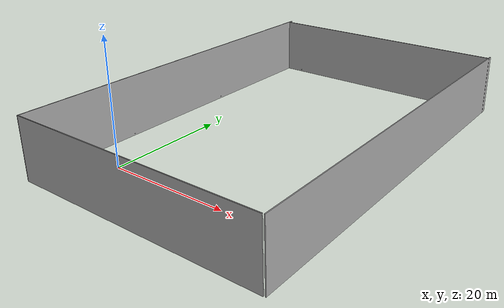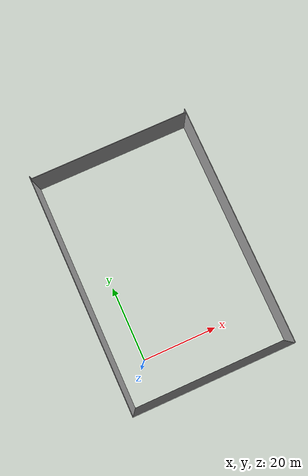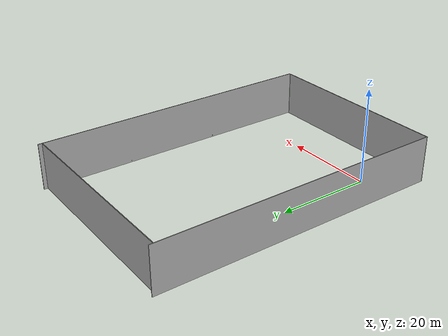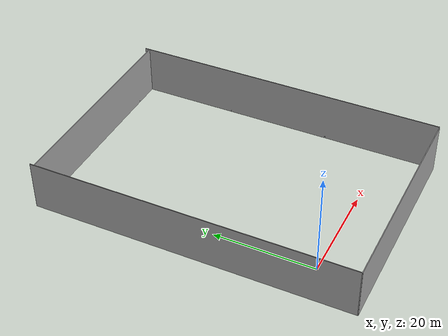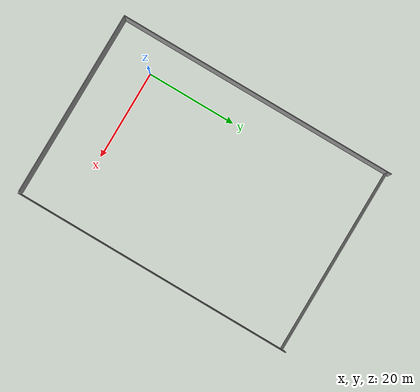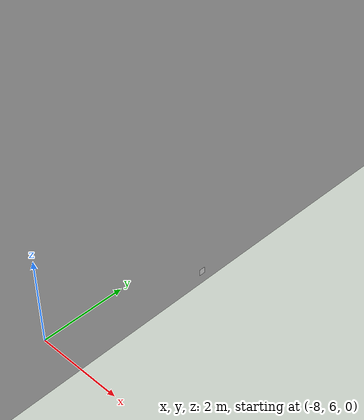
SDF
<sdf version="1.7">
 <world name="default">
  <gravity>0 0 -9.8</gravity>
  <physics name="default_physics" default="0" type="ode">
   <max_step_size>0.001</max_step_size>
   <real_time_factor>1</real_time_factor>
   <real_time_update_rate>1000</real_time_update_rate>
  </physics>
  <magnetic_field>6e-06 2.3e-05 -4.2e-05</magnetic_field>
  <atmosphere type="adiabatic"/>
  <scene><ambient>0.4 0.4 0.4 1</ambient><background>0.7 0.7 0.7 1</background><shadows>1</shadows></scene>
  <audio><device>default</device></audio>
  <spherical_coordinates>
   <surface_model>EARTH_WGS84</surface_model>
   <latitude_deg>0</latitude_deg>
   <longitude_deg>0</longitude_deg>
   <elevation>0</elevation>
   <heading_deg>0</heading_deg>
  </spherical_coordinates>
  <model name="ware_house_wall">
   <pose>13.9999 21.4496 0 0 -0 0</pose>
   <link name="Wall_1">
    <collision name="Wall_1_Collision">
     <geometry><box><size>41.8101 0.15 10</size></box></geometry>
     <pose>0 0 5 0 -0 0</pose>
    </collision>
    <visual name="Wall_1_Visual">
     <pose>0 0 5 0 -0 0</pose>
     <geometry><box><size>41.8101 0.15 10</size></box></geometry>
     <material>
      <script><uri>file://media/materials/scripts/gazebo.material</uri><name>Gazebo/Grey</name></script>
      <ambient>1 1 1 1</ambient>
     </material>
     <meta><layer>0</layer></meta>
    </visual>
    <pose>-0.169935 -31.5134 0 0 -0 -0.001769</pose>
   </link>
   <link name="Wall_10">
    <collision name="Wall_10_Collision">
     <geometry><box><size>42.005 0.15 10</size></box></geometry>
     <pose>0 0 5 0 -0 0</pose>
    </collision>
    <visual name="Wall_10_Visual">
     <pose>0 0 5 0 -0 0</pose>
     <geometry><box><size>42.005 0.15 10</size></box></geometry>
     <material>
      <script><uri>file://media/materials/scripts/gazebo.material</uri><name>Gazebo/Grey</name></script>
      <ambient>1 1 1 1</ambient>
     </material>
     <meta><layer>0</layer></meta>
    </visual>
    <pose>0.072565 30.7504 0 0 -0 0</pose>
   </link>
   <link name="Wall_3">
    <collision name="Wall_3_Collision">
     <geometry><box><size>63.177 0.15 10</size></box></geometry>
     <pose>0 0 5 0 -0 0</pose>
    </collision>
    <visual name="Wall_3_Visual">
     <pose>0 0 5 0 -0 0</pose>
     <geometry><box><size>63.177 0.15 10</size></box></geometry>
     <material>
      <script><uri>file://media/materials/scripts/gazebo.material</uri><name>Gazebo/Grey</name></script>
      <ambient>1 1 1 1</ambient>
     </material>
     <meta><layer>0</layer></meta>
    </visual>
    <pose>-20.9999 0.03692 0 0 -0 1.5708</pose>
   </link>
   <link name="Wall_6">
    <collision name="Wall_6_Collision">
     <geometry><box><size>63.15 0.15 10</size></box></geometry>
     <pose>0 0 5 0 -0 0</pose>
    </collision>
    <visual name="Wall_6_Visual">
     <pose>0 0 5 0 -0 0</pose>
     <geometry><box><size>63.15 0.15 10</size></box></geometry>
     <material>
      <script><uri>file://media/materials/scripts/gazebo.material</uri><name>Gazebo/Grey</name></script>
      <ambient>1 1 1 1</ambient>
     </material>
     <meta><layer>0</layer></meta>
    </visual>
    <pose>21.0001 0.05042 0 0 -0 1.5708</pose>
   </link>
   <static>1</static>
  </model>
  <light name="Warehouse_CeilingLight_003_clone" type="point">
   <pose>9.35302 1.08639 25 0 -0 0</pose>
   <diffuse>0.8 0.8 0.8 1</diffuse>
   <specular>0.2 0.2 0.2 1</specular>
   <direction>0.099015 0.099015 -0.990148</direction>
   <attenuation>
    <range>80</range>
    <constant>0.3</constant>
    <linear>0.01</linear>
    <quadratic>0.001</quadratic>
   </attenuation>
   <spot><inner_angle>0</inner_angle><outer_angle>0</outer_angle><falloff>0</falloff></spot>
  </light>
  <light name="Warehouse_CeilingLight_003_clone_clone" type="point">
   <pose>9.04557 38.9372 25 0 -0 0</pose>
   <diffuse>0.8 0.8 0.8 1</diffuse>
   <specular>0.2 0.2 0.2 1</specular>
   <direction>0.099015 0.099015 -0.990148</direction>
   <attenuation>
    <range>80</range>
    <constant>0.3</constant>
    <linear>0.01</linear>
    <quadratic>0.001</quadratic>
   </attenuation>
   <spot><inner_angle>0</inner_angle><outer_angle>0</outer_angle><falloff>0</falloff></spot>
  </light>
  <model name="aruco_marker_0">
   <static>1</static>
   <link name="link">
    <visual name="visual">
     <geometry><box><size>0.15 0.15 0.01</size></box></geometry>
     <material>
      <script><uri>model://aruco_marker_0/materials/scripts</uri><name>AruCo/Marker0</name></script>
     </material>
    </visual>
   </link>
   <pose>29.5613 52.1286 0.3124 1.57 -0 0</pose>
  </model>
  <model name="aruco_marker_1">
   <static>1</static>
   <link name="link">
    <visual name="visual">
     <geometry><box><size>0.15 0.15 0.01</size></box></geometry>
     <material>
      <script><uri>model://aruco_marker_1/materials/scripts</uri><name>AruCo/Marker1</name></script>
     </material>
    </visual>
   </link>
   <pose>34.9273 33.2604 0.3124 0 -1.57 0</pose>
  </model>
  <model name="aruco_marker_2">
   <static>1</static>
   <link name="link">
    <visual name="visual">
     <geometry><box><size>0.15 0.15 0.01</size></box></geometry>
     <material>
      <script><uri>model://aruco_marker_2/materials/scripts</uri><name>AruCo/Marker2</name></script>
     </material>
    </visual>
   </link>
   <pose>34.9278 12.4593 0.3124 0 -1.57 0</pose>
  </model>
  <model name="aruco_marker_3">
   <static>1</static>
   <link name="link">
    <visual name="visual">
     <geometry><box><size>0.15 0.15 0.01</size></box></geometry>
     <material>
      <script><uri>model://aruco_marker_3/materials/scripts</uri><name>AruCo/Marker3</name></script>
     </material>
    </visual>
   </link>
   <pose>29.6245 -10.0192 0.3124 -1.57 0 0</pose>
  </model>
  <model name="aruco_marker_4">
   <static>1</static>
   <link name="link">
    <visual name="visual">
     <geometry><box><size>0.15 0.15 0.01</size></box></geometry>
     <material>
      <script><uri>model://aruco_marker_4/materials/scripts</uri><name>AruCo/Marker4</name></script>
     </material>
    </visual>
   </link>
   <pose>-3.72348 -9.96071 0.311806 -1.57 0 0</pose>
  </model>
  <model name="aruco_marker_5">
   <static>1</static>
   <link name="link">
    <visual name="visual">
     <geometry><box><size>0.15 0.15 0.01</size></box></geometry>
     <material>
      <script><uri>model://aruco_marker_5/materials/scripts</uri><name>AruCo/Marker5</name></script>
     </material>
    </visual>
   </link>
   <pose>-6.92733 9.29816 0.312859 0 -1.57 0</pose>
  </model>
  <model name="aruco_marker_6">
   <static>1</static>
   <link name="link">
    <visual name="visual">
     <geometry><box><size>0.15 0.15 0.01</size></box></geometry>
     <material>
      <script><uri>model://aruco_marker_6/materials/scripts</uri><name>AruCo/Marker6</name></script>
     </material>
    </visual>
   </link>
   <pose>-6.92979 30.2575 0.313117 0 -1.57 0</pose>
  </model>
  <model name="aruco_marker_7">
   <static>1</static>
   <link name="link">
    <visual name="visual">
     <geometry><box><size>0.15 0.15 0.01</size></box></geometry>
     <material>
      <script><uri>model://aruco_marker_7/materials/scripts</uri><name>AruCo/Marker7</name></script>
     </material>
    </visual>
   </link>
   <pose>-3.70441 52.1278 0.31168 1.57 -0 0</pose>
  </model>
 </world>
</sdf>
